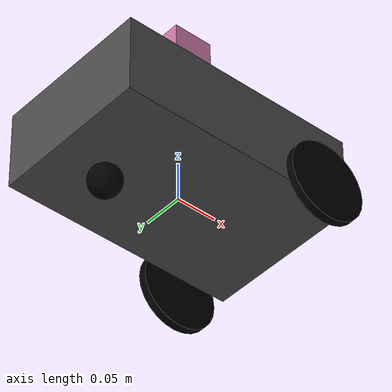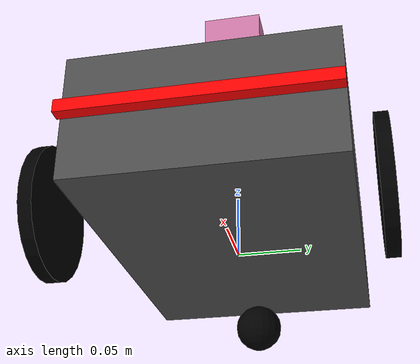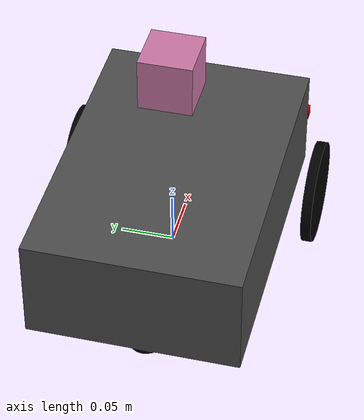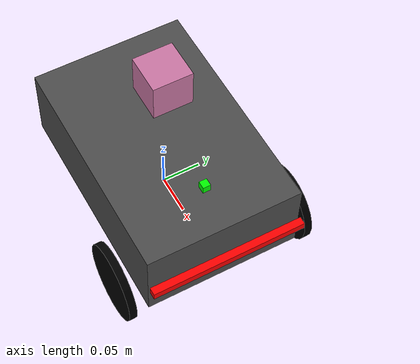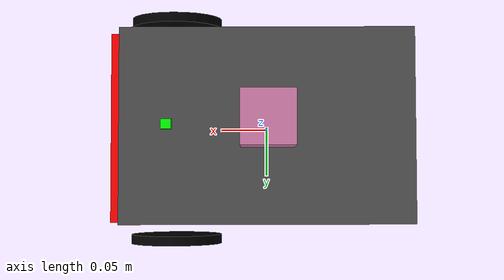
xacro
<?xml version="1.0"?>
<robot xmlns:xacro="http://www.ros.org/wiki/xacro" name="test_robot" >

  <xacro:property name="body_len" value="0.3"/>
  <xacro:property name="body_width" value="0.2"/>
  <xacro:property name="body_height" value="0.1"/>
  <xacro:property name="wheel_radius" value="0.05"/>
  <xacro:property name="wheel_width" value="0.01"/>

  <!-- Параметры дальномера -->
  <xacro:property name="rf_pos_x" value="0.1"/>
  <xacro:property name="rf_pos_z" value="0.12"/>
  <xacro:property name="rf_size" value="0.01"/>
  <xacro:property name="field_of_view" value=".072"/>
  <xacro:property name="update_rate" value="5"/>
  <xacro:property name="ray_count" value="1"/>
  <xacro:property name="min_range_default" value=".1"/>
  <xacro:property name="max_range_default" value=".7"/>

  <!-- Параметры ArUco-маркера -->
  <xacro:property name="marker_size" value="0.05"/>
  <xacro:property name="marker_pos_x" value="0.0"/>
  <xacro:property name="marker_pos_z" value="0.2"/>

  <link name="base_link" />

  <joint name="zero_joint" type="fixed">
    <parent link="base_link"/>
    <child link="body_link"/>
    <origin xyz="0 0 0" rpy="0 0 0"/>
  </joint>

  <link name="body_link">
    <visual>
      <geometry>
        <box size="${body_len} ${body_width} ${body_height}" />
      </geometry>
      <origin xyz="0 0 0.05" rpy="0 0 0"/>
      <material name="gray">
	    <color rgba="0.3 0.3 0.3 1"/>
      </material>
    </visual>
    <collision>
      <geometry>
        <box size="${body_len} ${body_width} ${body_height}" />
      </geometry>
      <origin xyz="0 0 0.05" rpy="0 0 0"/>
    </collision>
    <inertial>
      <mass value="3"/>
      <inertia ixx="1e-4" ixy="0.0" ixz="0.0" iyy="1e-4" iyz="0.0" izz="1e-4"/>
    </inertial>
  </link>
  <gazebo reference="body_link">
    <material>Gazebo/Gray</material>
  </gazebo>

  <xacro:macro name="wheel" params="name dx dy">
    <link name="${name}_link">
        <visual>
        <geometry>
            <cylinder length="${wheel_width}" radius="${wheel_radius}"/>
        </geometry>
        <origin rpy="${pi/2} 0 0" xyz="0 0 0"/>
        <material name="black">
            <color rgba="0 0 0 1"/>
        </material>
        </visual>
        <collision>
        <geometry>
            <cylinder length="${wheel_width}" radius="${wheel_radius}"/>
        </geometry>
        <origin rpy="${pi/2} 0 0" xyz="0 0 0"/>
        </collision>
        <inertial>
        <mass value="0.1"/>
        <inertia izz="1e-5" ixy="0.0" ixz="0.0" ixx="1e-5" iyz="0.0" iyy="1e-5"/>
        </inertial>
    </link>
    <joint name="${name}_j" type="continuous">
        <origin xyz="${dx} ${dy} 0" rpy="0 0 0"/>
        <parent link="body_link"/>
        <axis xyz="0 1 0"/>
        <child link="${name}_link"/>
    </joint>

    <transmission name="${name}_transm">
      <type>transmission_interface/SimpleTransmission</type>
      <joint name="${name}_j">
        <hardwareInterface>hardware_interface/VelocityJointInterface</hardwareInterface>
      </joint>
      <actuator name="${name}_motor">
        <mechanicalReduction>1</mechanicalReduction>
        <hardwareInterface>hardware_interface/VelocityJointInterface</hardwareInterface>
      </actuator>
    </transmission>
    <gazebo reference="${name}_link">
      <material>Gazebo/Black</material>
    </gazebo>
  </xacro:macro>

  <xacro:wheel name="lwheel" dx="0.1" dy="0.12"  />
  <xacro:wheel name="rwheel" dx="0.1" dy="-0.12"  />

  <link name="caster_link">
    <visual>
      <geometry>
        <sphere radius="0.02"/>
      </geometry>
      <material name="black">
        <color rgba="0 0 0 1"/>
      </material>
    </visual>
    <collision>
      <geometry>
        <sphere radius="0.02"/>
      </geometry>
    </collision>
    <inertial>
      <mass value="0.05"/>
      <inertia izz="1e-5" ixy="0.0" ixz="0.0" ixx="1e-5" iyz="0.0" iyy="1e-5"/>
    </inertial>
  </link>
  <gazebo reference="caster_link">
    <material>Gazebo/Black</material>
    <mu1>0.01</mu1>
    <mu2>0.01</mu2>
 </gazebo>

  <joint name="caster_j" type="fixed">
    <origin xyz="-0.1 0 -0.03" rpy="0 0 0"/>
    <parent link="body_link"/>
    <child link="caster_link"/>
  </joint>

  <!-- Поворотный дальномер -->

  <xacro:macro name="rf" params="link dx dy dz Yaw">
    <link name="${link}">
        <visual>
        <geometry>
            <box size="${rf_size} ${rf_size} ${rf_size}"/>
        </geometry>
        <material name="green">
            <color rgba="0 1 0 1"/>
        </material>
        </visual>
        <collision>
        <geometry>
            <box size="${rf_size} ${rf_size} ${rf_size}"/>
        </geometry>
        </collision>
        <inertial>
        <mass value="0.001"/>
        <inertia izz="1e-6" ixy="0.0" ixz="0.0" ixx="1e-6" iyz="0.0" iyy="1e-6"/>
        </inertial>
    </link>
    <joint name="${link}_j" type="revolute">
        <origin xyz="${dx} ${dy} ${dz}" rpy="0 0 ${Yaw}"/>
        <parent link="body_link"/>
        <child link="${link}"/>
        <axis xyz="0 0 1"/>
        <limit effort="30" velocity="10" lower="${-pi/2}" upper="${pi/2}" />
    </joint>

    <transmission name="${link}_transm">
        <type>transmission_interface/SimpleTransmission</type>
        <joint name="${link}_j">
        <hardwareInterface>hardware_interface/PositionJointInterface</hardwareInterface>
        </joint>
        <actuator name="${link}_motor">
        <mechanicalReduction>1</mechanicalReduction>
        <hardwareInterface>hardware_interface/PositionJointInterface</hardwareInterface>
        </actuator>
    </transmission>

    <gazebo reference="${link}">
        <material>Gazebo/Green</material>
        <sensor type="ray" name="rf_link_sensor">
        <always_on>true</always_on>
        <update_rate>${update_rate}</update_rate>
        <pose>0 0 0 0 0 0</pose>
        <visualize>true</visualize>
        <ray>
            <scan>
            <horizontal>
                <samples>${ray_count}</samples>
                <resolution>1</resolution>
                <min_angle>-${field_of_view/2}</min_angle>
                <max_angle> ${field_of_view/2}</max_angle>
            </horizontal>
            <vertical>
                <samples>${ray_count}</samples>
                <resolution>1</resolution>
                <min_angle>-${field_of_view/2}</min_angle>
                <max_angle> ${field_of_view/2}</max_angle>
            </vertical>
            </scan>
            <range>
            <min>${min_range_default}</min>
            <max>${max_range_default}</max>
            <resolution>0.01</resolution>
            </range>
        </ray>

        <plugin name="gazebo_ros_sonar_controller" filename="libhector_gazebo_ros_sonar.so">
            <updateRate>${update_rate}</updateRate>
            <gaussianNoise>0.005</gaussianNoise>
            <topicName>${link}/rf_data</topicName>
            <frameId>${link}</frameId>
        </plugin>
        </sensor>
    </gazebo>
  </xacro:macro>

  <xacro:rf link="rf_link" dx="${rf_pos_x}" dy="0" dz="${rf_pos_z}" Yaw="0" />

  <!-- ArUco-маркер на кубе -->

  <xacro:macro name="aruco_cube" params="material_name dx dy dz Yaw">

    <material name="${material_name}">
        <texture filename="package://test_robot_description/media/materials/textures/${material_name}.png"/>
    </material>

   <link name="${material_name}_marker_link">
        <visual>
        <geometry>
            <box size="${marker_size} ${marker_size} ${marker_size}"/>
        </geometry>
        <!--origin rpy="${roll} 0 0" xyz="0 0 0"/-->
        <material name="${material_name}" />
        </visual>
        <collision>
        <geometry>
            <box size="${marker_size} ${marker_size} ${marker_size}"/>
        </geometry>
        <origin rpy="0 0 0" xyz="0 0 0"/>
        </collision>
        <inertial>
        <mass value="0.001"/>
        <inertia izz="1e-6" ixy="0.0" ixz="0.0" ixx="1e-6" iyz="0.0" iyy="1e-6"/>
        </inertial>
    </link>
    <gazebo reference="${material_name}_marker_link">
       <material> ${material_name} </material>
    </gazebo>

    <joint name="${material_name}_marker_j" type="fixed">
        <origin xyz="${dx} ${dy} ${dz}" rpy="0 0 ${Yaw}"/>
        <parent link="body_link"/>
        <child link="${material_name}_marker_link"/>
    </joint>
  </xacro:macro>

  <xacro:aruco_cube material_name="aruco_example" dx="${marker_pos_x}" dy="0" dz="${marker_pos_z}" Yaw="0" />

  <!-- контактный сенсор -->

     <link name="bumper_link">
        <visual>
        <geometry>
            <box size="0.01 0.2 0.01"/>
        </geometry>
        <!--origin rpy="${roll} 0 0" xyz="0 0 0"/-->
        <material name="red">
          <color rgba="1 0 0 1"/>
        </material>
        </visual>
        <collision name="base_link_fixed_joint_lump__bumper_collision_collision_2">
        <geometry>
            <box size="0.01 0.2 0.01"/>
        </geometry>
        <origin rpy="0 0 0" xyz="0 0 0"/>
        </collision>
        <inertial>
        <mass value="0.001"/>
        <inertia izz="1e-6" ixy="0.0" ixz="0.0" ixx="1e-6" iyz="0.0" iyy="1e-6"/>
        </inertial>
    </link>
      <joint name="bumper_link_j" type="fixed">
        <origin xyz="0.16 0 0.05" rpy="0 0 0"/>
        <parent link="body_link"/>
        <child link="bumper_link"/>
    </joint>
    <gazebo reference="bumper_link">
       <material> Gazebo/Red </material>
    </gazebo>

  <gazebo>
    <plugin name="gazebo_ros_control" filename="libgazebo_ros_control.so">
        <robotSimType>gazebo_ros_control/DefaultRobotHWSim</robotSimType>
        <legacyModeNS>true</legacyModeNS>
        <!-- Control period is recommended to be the same as the world simulation period -->
        <controlPeriod>0.001</controlPeriod>
    </plugin>
  </gazebo>

  <gazebo>

</gazebo>

</robot>
